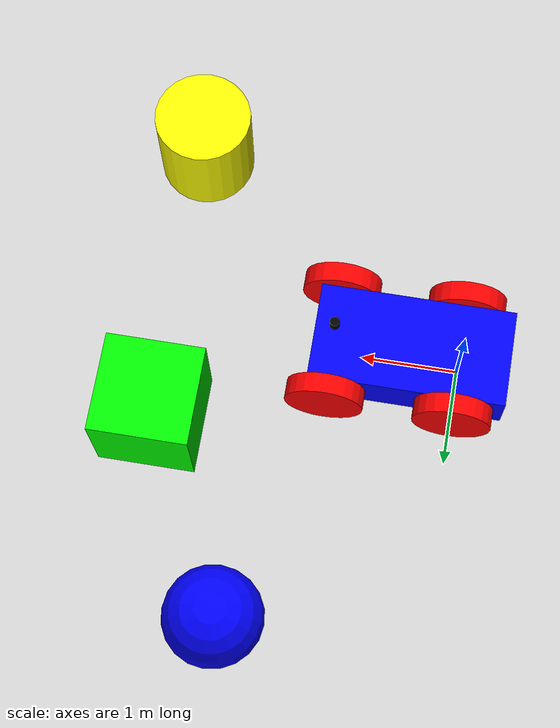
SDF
<?xml version="1.0" ?>
<sdf version="1.10">
    <world name="car_world">
        <physics name="1ms" type="ignored">
            <max_step_size>0.001</max_step_size>
            <real_time_factor>1.0</real_time_factor>
        </physics>

        <plugin filename="gz-sim-physics-system" name="gz::sim::systems::Physics" />
        <plugin filename="gz-sim-user-commands-system" name="gz::sim::systems::UserCommands" />
        <plugin filename="gz-sim-scene-broadcaster-system" name="gz::sim::systems::SceneBroadcaster" />
        <plugin filename="gz-sim-sensors-system" name="gz::sim::systems::Sensors">
            <render_engine>ogre2</render_engine>
        </plugin>

        <light type="directional" name="sun">
            <cast_shadows>true</cast_shadows>
            <pose>0 0 10 0 0 0</pose>
            <diffuse>0.8 0.8 0.8 1</diffuse>
            <specular>0.2 0.2 0.2 1</specular>
            <direction>-0.5 0.1 -0.9</direction>
        </light>

        <model name="ground_plane">
            <static>true</static>
            <link name="link">
                <collision name="collision">
                    <geometry>
                        <plane>
                            <normal>0 0 1</normal>
                        </plane>
                    </geometry>
                </collision>
                <visual name="visual">
                    <geometry>
                        <plane>
                            <normal>0 0 1</normal>
                            <size>100 100</size>
                        </plane>
                    </geometry>
                    <material>
                        <ambient>0.8 0.8 0.8 1</ambient>
                        <diffuse>0.8 0.8 0.8 1</diffuse>
                        <specular>0.8 0.8 0.8 1</specular>
                    </material>
                </visual>
            </link>
        </model>

        <model name='box_obstacle'>
            <pose>3 1 0.5 0 0 0</pose>
            <link name='link'>
                <collision name='c1'>
                    <geometry>
                        <box>
                            <size>1 1 1</size>
                        </box>
                    </geometry>
                </collision>
                <visual name='v1'>
                    <geometry>
                        <box>
                            <size>1 1 1</size>
                        </box>
                    </geometry>
                    <material>
                        <ambient>0 1 0 1</ambient>
                        <diffuse>0 1 0 1</diffuse>
                    </material>
                </visual>
            </link>
        </model>

        <model name='cyl_obstacle'>
            <pose>3 -2 0.5 0 0 0</pose>
            <link name='link'>
                <collision name='c1'>
                    <geometry>
                        <cylinder>
                            <radius>0.5</radius>
                            <length>1</length>
                        </cylinder>
                    </geometry>
                </collision>
                <visual name='v1'>
                    <geometry>
                        <cylinder>
                            <radius>0.5</radius>
                            <length>1</length>
                        </cylinder>
                    </geometry>
                    <material>
                        <ambient>1 1 0 1</ambient>
                        <diffuse>1 1 0 1</diffuse>
                    </material>
                </visual>
            </link>
        </model>

        <model name='sphere_obstacle'>
            <pose>2 3 0.5 0 0 0</pose>
            <link name='link'>
                <collision name='c1'>
                    <geometry>
                        <sphere>
                            <radius>0.5</radius>
                        </sphere>
                    </geometry>
                </collision>
                <visual name='v1'>
                    <geometry>
                        <sphere>
                            <radius>0.5</radius>
                        </sphere>
                    </geometry>
                    <material>
                        <ambient>0 0 1 1</ambient>
                        <diffuse>0 0 1 1</diffuse>
                    </material>
                </visual>
            </link>
        </model>

        <model name='vehicle_blue' canonical_link='chassis'>
            <pose relative_to='world'>0 0 0 0 0 0</pose>

            <link name='chassis'>
                <pose relative_to='__model__'>0.5 0 0.4 0 0 0</pose>
                <inertial>
                    <mass>1.14395</mass>
                    <inertia>
                        <ixx>0.095329</ixx>
                        <ixy>0</ixy>
                        <ixz>0</ixz>
                        <iyy>0.381317</iyy>
                        <iyz>0</iyz>
                        <izz>0.476646</izz>
                    </inertia>
                </inertial>
                <visual name='visual'>
                    <geometry>
                        <box>
                            <size>2.0 1.0 0.5</size>
                        </box>
                    </geometry>
                    <material>
                        <ambient>0.0 0.0 1.0 1</ambient>
                        <diffuse>0.0 0.0 1.0 1</diffuse>
                    </material>
                </visual>
                <collision name='collision'>
                    <geometry>
                        <box>
                            <size>2.0 1.0 0.5</size>
                        </box>
                    </geometry>
                </collision>
            </link>

            <link name='front_left_wheel'>
                <pose relative_to="chassis">0.8 0.6 0 -1.5707 0 0</pose>
                <inertial>
                    <mass>1</mass>
                    <inertia>
                        <ixx>0.043333</ixx>
                        <ixy>0</ixy>
                        <ixz>0</ixz>
                        <iyy>0.043333</iyy>
                        <iyz>0</iyz>
                        <izz>0.08</izz>
                    </inertia>
                </inertial>
                <visual name='visual'>
                    <geometry>
                        <cylinder>
                            <radius>0.4</radius>
                            <length>0.2</length>
                        </cylinder>
                    </geometry>
                    <material>
                        <ambient>1 0 0 1</ambient>
                        <diffuse>1 0 0 1</diffuse>
                    </material>
                </visual>
                <collision name='collision'>
                    <geometry>
                        <cylinder>
                            <radius>0.4</radius>
                            <length>0.2</length>
                        </cylinder>
                    </geometry>
                </collision>
            </link>

            <link name='front_right_wheel'>
                <pose relative_to="chassis">0.8 -0.6 0 -1.5707 0 0</pose>
                <inertial>
                    <mass>1</mass>
                    <inertia>
                        <ixx>0.043333</ixx>
                        <ixy>0</ixy>
                        <ixz>0</ixz>
                        <iyy>0.043333</iyy>
                        <iyz>0</iyz>
                        <izz>0.08</izz>
                    </inertia>
                </inertial>
                <visual name='visual'>
                    <geometry>
                        <cylinder>
                            <radius>0.4</radius>
                            <length>0.2</length>
                        </cylinder>
                    </geometry>
                    <material>
                        <ambient>1 0 0 1</ambient>
                        <diffuse>1 0 0 1</diffuse>
                    </material>
                </visual>
                <collision name='collision'>
                    <geometry>
                        <cylinder>
                            <radius>0.4</radius>
                            <length>0.2</length>
                        </cylinder>
                    </geometry>
                </collision>
            </link>

            <link name='rear_left_wheel'>
                <pose relative_to="chassis">-0.5 0.6 0 -1.5707 0 0</pose>
                <inertial>
                    <mass>1</mass>
                    <inertia>
                        <ixx>0.043333</ixx>
                        <ixy>0</ixy>
                        <ixz>0</ixz>
                        <iyy>0.043333</iyy>
                        <iyz>0</iyz>
                        <izz>0.08</izz>
                    </inertia>
                </inertial>
                <visual name='visual'>
                    <geometry>
                        <cylinder>
                            <radius>0.4</radius>
                            <length>0.2</length>
                        </cylinder>
                    </geometry>
                    <material>
                        <ambient>1 0 0 1</ambient>
                        <diffuse>1 0 0 1</diffuse>
                    </material>
                </visual>
                <collision name='collision'>
                    <geometry>
                        <cylinder>
                            <radius>0.4</radius>
                            <length>0.2</length>
                        </cylinder>
                    </geometry>
                </collision>
            </link>

            <link name='rear_right_wheel'>
                <pose relative_to="chassis">-0.5 -0.6 0 -1.5707 0 0</pose>
                <inertial>
                    <mass>1</mass>
                    <inertia>
                        <ixx>0.043333</ixx>
                        <ixy>0</ixy>
                        <ixz>0</ixz>
                        <iyy>0.043333</iyy>
                        <iyz>0</iyz>
                        <izz>0.08</izz>
                    </inertia>
                </inertial>
                <visual name='visual'>
                    <geometry>
                        <cylinder>
                            <radius>0.4</radius>
                            <length>0.2</length>
                        </cylinder>
                    </geometry>
                    <material>
                        <ambient>1 0 0 1</ambient>
                        <diffuse>1 0 0 1</diffuse>
                    </material>
                </visual>
                <collision name='collision'>
                    <geometry>
                        <cylinder>
                            <radius>0.4</radius>
                            <length>0.2</length>
                        </cylinder>
                    </geometry>
                </collision>
            </link>

            <link name='lidar_link'>
                <pose relative_to='chassis'>0.8 0 0.5 0 0 0</pose>
                <inertial>
                    <mass>0.1</mass>
                    <inertia>
                        <ixx>0.000166667</ixx>
                        <iyy>0.000166667</iyy>
                        <izz>0.000166667</izz>
                    </inertia>
                </inertial>
                <visual name='visual'>
                    <geometry>
                        <cylinder>
                            <radius>0.05</radius>
                            <length>0.1</length>
                        </cylinder>
                    </geometry>
                    <material>
                        <ambient>0 0 0 1</ambient>
                        <diffuse>0 0 0 1</diffuse>
                    </material>
                </visual>
                <sensor name='gpu_lidar' type='gpu_lidar'>
                    <pose>0 0 0 0 0 0</pose>
                    <topic>lidar</topic>
                    <update_rate>10</update_rate>
                    <lidar>
                        <scan>
                            <horizontal>
                                <samples>640</samples>
                                <resolution>1</resolution>
                                <min_angle>-1.396263</min_angle>
                                <max_angle>1.396263</max_angle>
                            </horizontal>
                        </scan>
                        <range>
                            <min>0.08</min>
                            <max>10.0</max>
                        </range>
                    </lidar>
                    <visualize>true</visualize>
                </sensor>
            </link>

            <joint name='front_left_wheel_joint' type='revolute'>
                <pose relative_to='front_left_wheel'/>
                <parent>chassis</parent>
                <child>front_left_wheel</child>
                <axis>
                    <xyz expressed_in='__model__'>0 1 0</xyz>
                    <limit>
                        <lower>-1.79e+308</lower>
                        <upper>1.79e+308</upper>
                    </limit>
                </axis>
            </joint>

            <joint name='front_right_wheel_joint' type='revolute'>
                <pose relative_to='front_right_wheel'/>
                <parent>chassis</parent>
                <child>front_right_wheel</child>
                <axis>
                    <xyz expressed_in='__model__'>0 1 0</xyz>
                    <limit>
                        <lower>-1.79e+308</lower>
                        <upper>1.79e+308</upper>
                    </limit>
                </axis>
            </joint>

            <joint name='rear_left_wheel_joint' type='revolute'>
                <pose relative_to='rear_left_wheel'/>
                <parent>chassis</parent>
                <child>rear_left_wheel</child>
                <axis>
                    <xyz expressed_in='__model__'>0 1 0</xyz>
                    <limit>
                        <lower>-1.79e+308</lower>
                        <upper>1.79e+308</upper>
                    </limit>
                </axis>
            </joint>

            <joint name='rear_right_wheel_joint' type='revolute'>
                <pose relative_to='rear_right_wheel'/>
                <parent>chassis</parent>
                <child>rear_right_wheel</child>
                <axis>
                    <xyz expressed_in='__model__'>0 1 0</xyz>
                    <limit>
                        <lower>-1.79e+308</lower>
                        <upper>1.79e+308</upper>
                    </limit>
                </axis>
            </joint>

            <joint name='lidar_joint' type='fixed'>
                <parent>chassis</parent>
                <child>lidar_link</child>
            </joint>

            <plugin filename="gz-sim-diff-drive-system" name="gz::sim::systems::DiffDrive">
                <left_joint>front_left_wheel_joint</left_joint>
                <left_joint>rear_left_wheel_joint</left_joint>
                <right_joint>front_right_wheel_joint</right_joint>
                <right_joint>rear_right_wheel_joint</right_joint>
                <wheel_separation>1.0</wheel_separation>
                <wheel_radius>0.4</wheel_radius>
                <odom_publish_frequency>1</odom_publish_frequency>
                <topic>cmd_vel</topic>
            </plugin>

            <plugin filename="gz-sim-triggered-publisher-system" name="gz::sim::systems::TriggeredPublisher">
                <input type="gz.msgs.Int32" topic="/keyboard/keypress">
                    <match field="data">16777235</match>
                </input>
                <output type="gz.msgs.Twist" topic="/cmd_vel">
                    linear: {x: 1}, angular: {z: 0.0}
                </output>
            </plugin>

            <plugin filename="gz-sim-triggered-publisher-system" name="gz::sim::systems::TriggeredPublisher">
                <input type="gz.msgs.Int32" topic="/keyboard/keypress">
                    <match field="data">16777237</match>
                </input>
                <output type="gz.msgs.Twist" topic="/cmd_vel">
                    linear: {x: -1}, angular: {z: 0.0}
                </output>
            </plugin>

            <plugin filename="gz-sim-triggered-publisher-system" name="gz::sim::systems::TriggeredPublisher">
                <input type="gz.msgs.Int32" topic="/keyboard/keypress">
                    <match field="data">16777234</match>
                </input>
                <output type="gz.msgs.Twist" topic="/cmd_vel">
                    linear: {x: 0.0}, angular: {z: 1}
                </output>
            </plugin>

            <plugin filename="gz-sim-triggered-publisher-system" name="gz::sim::systems::TriggeredPublisher">
                <input type="gz.msgs.Int32" topic="/keyboard/keypress">
                    <match field="data">16777236</match>
                </input>
                <output type="gz.msgs.Twist" topic="/cmd_vel">
                    linear: {x: 0.0}, angular: {z: -1}
                </output>
            </plugin>

        </model>
    </world>
</sdf>
